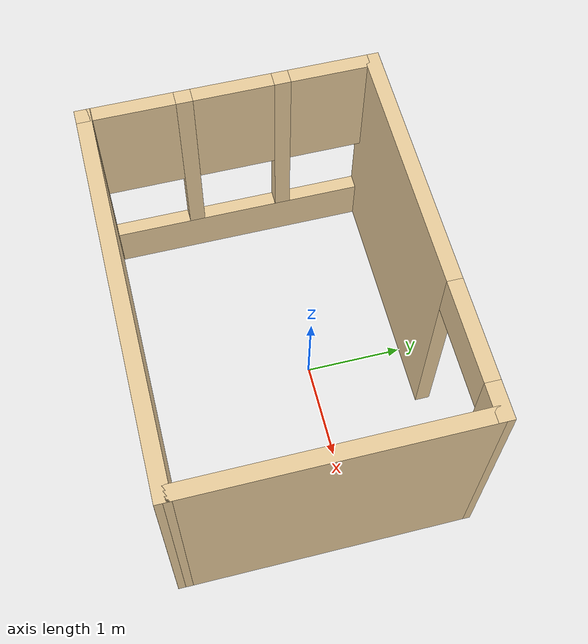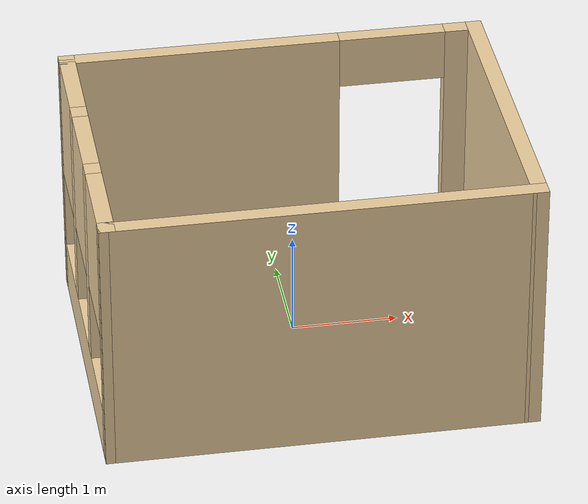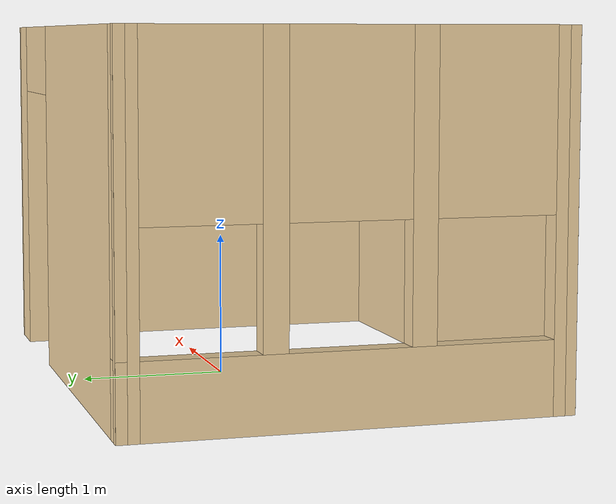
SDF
<?xml version='1.0'?>
<sdf version='1.7'>
  <model name='maly_p'>
    <pose>-0.00887 -0.34005 0 0 -0 0</pose>
    <link name='Wall_1'>
      <collision name='Wall_1_Collision'>
        <geometry>
          <box>
            <size>4 0.15 2.5</size>
          </box>
        </geometry>
        <pose>0 0 1.25 0 -0 0</pose>
      </collision>
      <visual name='Wall_1_Visual'>
        <pose>0 0 1.25 0 -0 0</pose>
        <geometry>
          <box>
            <size>4 0.15 2.5</size>
          </box>
        </geometry>
        <material>
          <script>
            <uri>file://media/materials/scripts/gazebo.material</uri>
            <name>Gazebo/Grey</name>
          </script>
          <ambient>0.921569 0.807843 0.615686 1</ambient>
        </material>
        <meta>
          <layer>0</layer>
        </meta>
      </visual>
      <pose>0.00487 -1.42445 0 0 -0 0.00026</pose>
    </link>
    <link name='Wall_3'>
      <pose>-1.925 -0 0 0 -0 1.57421</pose>
      <visual name='Wall_3_Visual_0'>
        <pose>-1.42196 0 1.25 0 -0 0</pose>
        <geometry>
          <box>
            <size>0.156086 0.15 2.5</size>
          </box>
        </geometry>
        <material>
          <script>
            <uri>file://media/materials/scripts/gazebo.material</uri>
            <name>Gazebo/Grey</name>
          </script>
          <ambient>0.921569 0.807843 0.615686 1</ambient>
        </material>
        <meta>
          <layer>0</layer>
        </meta>
      </visual>
      <collision name='Wall_3_Collision_0'>
        <geometry>
          <box>
            <size>0.156086 0.15 2.5</size>
          </box>
        </geometry>
        <pose>-1.42196 0 1.25 0 -0 0</pose>
      </collision>
      <visual name='Wall_3_Visual_1'>
        <pose>0.078043 0 0.25 0 -0 0</pose>
        <geometry>
          <box>
            <size>2.84391 0.15 0.5</size>
          </box>
        </geometry>
        <material>
          <script>
            <uri>file://media/materials/scripts/gazebo.material</uri>
            <name>Gazebo/Grey</name>
          </script>
          <ambient>0.921569 0.807843 0.615686 1</ambient>
        </material>
        <meta>
          <layer>0</layer>
        </meta>
      </visual>
      <collision name='Wall_3_Collision_1'>
        <geometry>
          <box>
            <size>2.84391 0.15 0.5</size>
          </box>
        </geometry>
        <pose>0.078043 0 0.25 0 -0 0</pose>
      </collision>
      <visual name='Wall_3_Visual_2'>
        <pose>-0.461412 0 1.5 0 -0 0</pose>
        <geometry>
          <box>
            <size>0.165004 0.15 2</size>
          </box>
        </geometry>
        <material>
          <script>
            <uri>file://media/materials/scripts/gazebo.material</uri>
            <name>Gazebo/Grey</name>
          </script>
          <ambient>0.921569 0.807843 0.615686 1</ambient>
        </material>
        <meta>
          <layer>0</layer>
        </meta>
      </visual>
      <collision name='Wall_3_Collision_2'>
        <geometry>
          <box>
            <size>0.165004 0.15 2</size>
          </box>
        </geometry>
        <pose>-0.461412 0 1.5 0 -0 0</pose>
      </collision>
      <visual name='Wall_3_Visual_3'>
        <pose>0.503651 0 1.5 0 -0 0</pose>
        <geometry>
          <box>
            <size>0.165123 0.15 2</size>
          </box>
        </geometry>
        <material>
          <script>
            <uri>file://media/materials/scripts/gazebo.material</uri>
            <name>Gazebo/Grey</name>
          </script>
          <ambient>0.921569 0.807843 0.615686 1</ambient>
        </material>
        <meta>
          <layer>0</layer>
        </meta>
      </visual>
      <collision name='Wall_3_Collision_3'>
        <geometry>
          <box>
            <size>0.165123 0.15 2</size>
          </box>
        </geometry>
        <pose>0.503651 0 1.5 0 -0 0</pose>
      </collision>
      <visual name='Wall_3_Visual_4'>
        <pose>1.44311 0 1.5 0 -0 0</pose>
        <geometry>
          <box>
            <size>0.113787 0.15 2</size>
          </box>
        </geometry>
        <material>
          <script>
            <uri>file://media/materials/scripts/gazebo.material</uri>
            <name>Gazebo/Grey</name>
          </script>
          <ambient>0.921569 0.807843 0.615686 1</ambient>
        </material>
        <meta>
          <layer>0</layer>
        </meta>
      </visual>
      <collision name='Wall_3_Collision_4'>
        <geometry>
          <box>
            <size>0.113787 0.15 2</size>
          </box>
        </geometry>
        <pose>1.44311 0 1.5 0 -0 0</pose>
      </collision>
      <visual name='Wall_3_Visual_5'>
        <pose>-0.943914 0 1.9 0 -0 0</pose>
        <geometry>
          <box>
            <size>0.8 0.15 1.2</size>
          </box>
        </geometry>
        <material>
          <script>
            <uri>file://media/materials/scripts/gazebo.material</uri>
            <name>Gazebo/Grey</name>
          </script>
          <ambient>0.921569 0.807843 0.615686 1</ambient>
        </material>
        <meta>
          <layer>0</layer>
        </meta>
      </visual>
      <collision name='Wall_3_Collision_5'>
        <geometry>
          <box>
            <size>0.8 0.15 1.2</size>
          </box>
        </geometry>
        <pose>-0.943914 0 1.9 0 -0 0</pose>
      </collision>
      <visual name='Wall_3_Visual_6'>
        <pose>0.02109 0 1.9 0 -0 0</pose>
        <geometry>
          <box>
            <size>0.8 0.15 1.2</size>
          </box>
        </geometry>
        <material>
          <script>
            <uri>file://media/materials/scripts/gazebo.material</uri>
            <name>Gazebo/Grey</name>
          </script>
          <ambient>0.921569 0.807843 0.615686 1</ambient>
        </material>
        <meta>
          <layer>0</layer>
        </meta>
      </visual>
      <collision name='Wall_3_Collision_6'>
        <geometry>
          <box>
            <size>0.8 0.15 1.2</size>
          </box>
        </geometry>
        <pose>0.02109 0 1.9 0 -0 0</pose>
      </collision>
      <visual name='Wall_3_Visual_7'>
        <pose>0.986213 0 1.9 0 -0 0</pose>
        <geometry>
          <box>
            <size>0.8 0.15 1.2</size>
          </box>
        </geometry>
        <material>
          <script>
            <uri>file://media/materials/scripts/gazebo.material</uri>
            <name>Gazebo/Grey</name>
          </script>
          <ambient>0.921569 0.807843 0.615686 1</ambient>
        </material>
        <meta>
          <layer>0</layer>
        </meta>
      </visual>
      <collision name='Wall_3_Collision_7'>
        <geometry>
          <box>
            <size>0.8 0.15 1.2</size>
          </box>
        </geometry>
        <pose>0.986213 0 1.9 0 -0 0</pose>
      </collision>
    </link>
    <link name='Wall_5'>
      <pose>-0.00487 1.42495 0 0 -0 0</pose>
      <visual name='Wall_5_Visual_0'>
        <pose>-0.685243 0 1.25 0 -0 0</pose>
        <geometry>
          <box>
            <size>2.62951 0.15 2.5</size>
          </box>
        </geometry>
        <material>
          <script>
            <uri>file://media/materials/scripts/gazebo.material</uri>
            <name>Gazebo/Grey</name>
          </script>
          <ambient>0.921569 0.807843 0.615686 1</ambient>
        </material>
        <meta>
          <layer>0</layer>
        </meta>
      </visual>
      <collision name='Wall_5_Collision_0'>
        <geometry>
          <box>
            <size>2.62951 0.15 2.5</size>
          </box>
        </geometry>
        <pose>-0.685243 0 1.25 0 -0 0</pose>
      </collision>
      <visual name='Wall_5_Visual_1'>
        <pose>1.81476 0 1.25 0 -0 0</pose>
        <geometry>
          <box>
            <size>0.370486 0.15 2.5</size>
          </box>
        </geometry>
        <material>
          <script>
            <uri>file://media/materials/scripts/gazebo.material</uri>
            <name>Gazebo/Grey</name>
          </script>
          <ambient>0.921569 0.807843 0.615686 1</ambient>
        </material>
        <meta>
          <layer>0</layer>
        </meta>
      </visual>
      <collision name='Wall_5_Collision_1'>
        <geometry>
          <box>
            <size>0.370486 0.15 2.5</size>
          </box>
        </geometry>
        <pose>1.81476 0 1.25 0 -0 0</pose>
      </collision>
      <visual name='Wall_5_Visual_2'>
        <pose>1.12951 0 2.25 0 -0 0</pose>
        <geometry>
          <box>
            <size>1 0.15 0.5</size>
          </box>
        </geometry>
        <material>
          <script>
            <uri>file://media/materials/scripts/gazebo.material</uri>
            <name>Gazebo/Grey</name>
          </script>
          <ambient>0.921569 0.807843 0.615686 1</ambient>
        </material>
        <meta>
          <layer>0</layer>
        </meta>
      </visual>
      <collision name='Wall_5_Collision_2'>
        <geometry>
          <box>
            <size>1 0.15 0.5</size>
          </box>
        </geometry>
        <pose>1.12951 0 2.25 0 -0 0</pose>
      </collision>
    </link>
    <link name='Wall_6'>
      <collision name='Wall_6_Collision'>
        <geometry>
          <box>
            <size>2.99866 0.15 2.5</size>
          </box>
        </geometry>
        <pose>0 0 1.25 0 -0 0</pose>
      </collision>
      <visual name='Wall_6_Visual'>
        <pose>0 0 1.25 0 -0 0</pose>
        <geometry>
          <box>
            <size>2.99866 0.15 2.5</size>
          </box>
        </geometry>
        <material>
          <script>
            <uri>file://media/materials/scripts/gazebo.material</uri>
            <name>Gazebo/Grey</name>
          </script>
          <ambient>0.921569 0.807843 0.615686 1</ambient>
        </material>
        <meta>
          <layer>0</layer>
        </meta>
      </visual>
      <pose>1.925 0.0005 0 0 -0 -1.56738</pose>
    </link>
    <static>1</static>
  </model>
</sdf>
